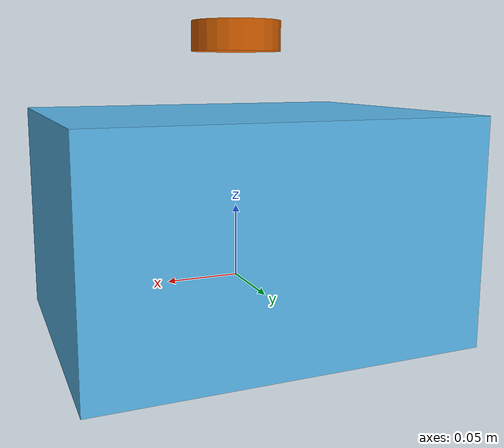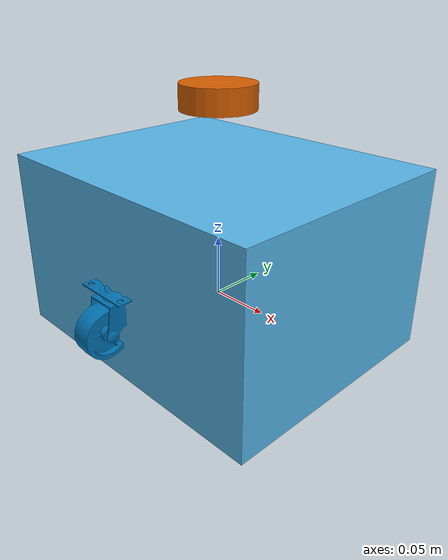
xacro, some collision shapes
<?xml version="1.0"?>
<robot xmlns:xacro="http://ros.org/wiki/xacro" name="rosbot">

    <xacro:include filename="$(find rosbot_description)/urdf/rosbot_gazebo.xacro"/>
    <xacro:include filename="$(find rosbot_description)/urdf/inertial_macros.xacro"/>

  <!-- Base Footprint -->
  <link name="base_footprint"/>
  <joint name="base_joint" type="fixed">
    <parent link="base_footprint"/>
    <child link="base_link"/>
    <origin xyz="0 0 0.04" rpy="0 0 0"/>
  </joint>

  <!-- Base Link -->
  <link name="base_link">
    <visual>
      <origin xyz="0 0 0" rpy="0 0 0"/>
      <geometry>
        <mesh filename="package://rosbot_description/meshes/base_link.stl"/>
      </geometry>
    </visual>
    <collision>
      <origin xyz="0 0 0" rpy="0 0 0"/>
      <geometry>
       <box size="0.255 0.205 0.150"/>
      </geometry>
    </collision>
    <xacro:inertial_box mass="2" x="0.255" y="0.205" z="0.150">
      <origin xyz="0 0 0" rpy="0 0 0"/>
    </xacro:inertial_box>```
  </link>

  <!-- Left Wheel -->
  <link name="wheel_left_link">
    <visual>
      <origin xyz="0 0 0" rpy=" 0 0 0"/>
      <geometry>
        <cylinder radius="0.030" length= "0.0200"/>
      </geometry>
    </visual>
    <collision>
      <origin xyz="1 0 0" rpy="0 0 0"/>
      <geometry>
        <sphere radius="0.030"/>
      </geometry>
    </collision>
    <xacro:inertial_sphere mass="0.01" radius="0.040">
            <origin xyz="0 0 0" rpy="0 0 0"/>
        </xacro:inertial_sphere>
  </link>
<joint name="wheel_left_joint" type="continuous">
    <parent link="base_link"/>
    <child link="wheel_left_link"/>
    <axis xyz="1 0 0"/>
    <origin rpy="0 0 0" xyz="0.07575 0.06100 -0.01750"/>
</joint>

  <!-- Right Wheel -->
  <link name="wheel_right_link">
    <visual>
      <origin xyz="0 0 0" rpy="0 0 0"/>
      <geometry>
        <mesh filename="package://rosbot_description/meshes/wheel_right_link.stl"/>
      </geometry>
    </visual>
    <collision>
      <origin xyz="0 0 0" rpy="0 0 0"/>
      <geometry>
         <sphere radius="0.030"/>
      </geometry>
    </collision>
    <xacro:inertial_sphere mass="0.01" radius="0.040">
            <origin xyz="0 0 0" rpy="0 0 0"/>
        </xacro:inertial_sphere>
  </link>
<joint name="wheel_right_joint" type="continuous">
    <parent link="base_link"/>
    <child link="wheel_right_link"/>
    <axis xyz="1 0 0"/>
    <origin rpy="0 0 3.14" xyz="-0.07575 0.06100 -0.01750"/>
</joint>

  <!-- Caster Wheel -->
  <link name="caster_wheel_link">
    <visual>
      <origin rpy="0 0 1.5708" xyz="0 0 0"/>
      <geometry>
        <mesh filename="package://rosbot_description/meshes/caster_wheel_link.stl"/>
      </geometry>
    </visual>
    <collision>
      <origin xyz="0.02000 -0.09500 0" rpy="0 0 0"/>
      <geometry>
        <sphere radius="0.030"/>   <!-- might need to change -->
      </geometry>
    </collision>
    <xacro:inertial_sphere mass="0.01" radius="0.040">
      <origin xyz="0 0 0" rpy="0 0 0"/>
    </xacro:inertial_sphere>
  </link>
  <joint name="caster_wheel_joint" type="fixed">
    <parent link="base_link"/>
    <child link="caster_wheel_link"/>
    <origin rpy="0 0 0" xyz="0.02000 -0.09500 0"/>
  </joint>

  <!-- LiDAR -->
  <link name="lidar_link">
    <visual>
      <origin xyz="0 0 0" rpy="0 0 0"/>
      <geometry>
        <cylinder radius="0.03" length="0.02"/>
      </geometry>
    </visual>
    <collision>
      <origin xyz="0 0 0" rpy="0 0 0"/>
      <geometry>
        <cylinder radius="0.03" length="0.02"/>
      </geometry>
    </collision>
    <inertial>
      <mass value="0.1"/>
      <inertia ixx="0.0005" ixy="0.0" ixz="0.0"
               iyy="0.0005" iyz="0.0"
               izz="0.0005"/>
      <origin xyz="0 0 0" rpy="0 0 0"/>
    </inertial>
  </link>
  <joint name="lidar_joint" type="fixed">
    <parent link="base_link"/>
    <child link="lidar_link"/>
    <origin xyz="0 0 0.125" rpy="0 0 0"/> <!-- adjust height as needed -->
  </joint>

</robot>
